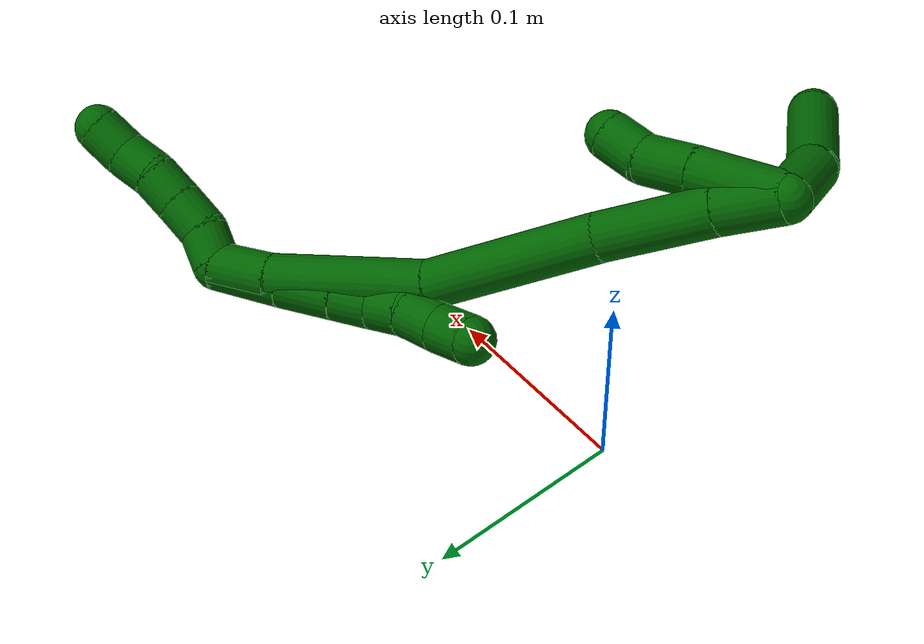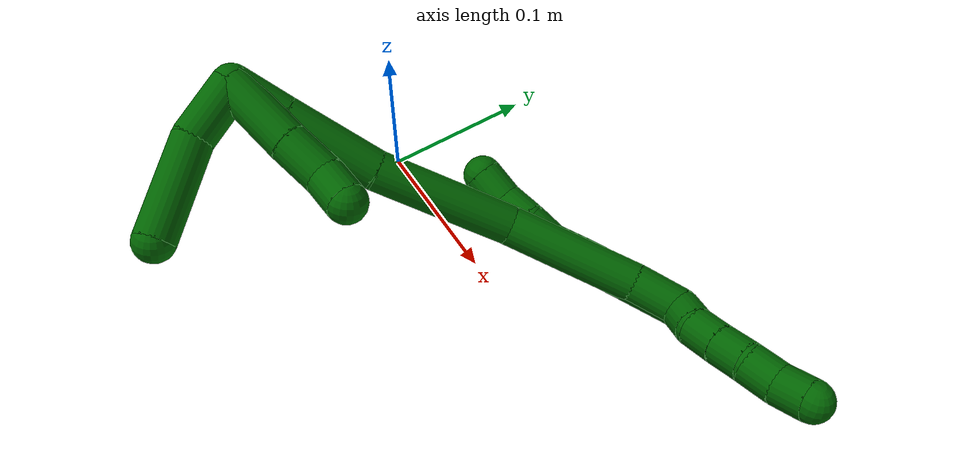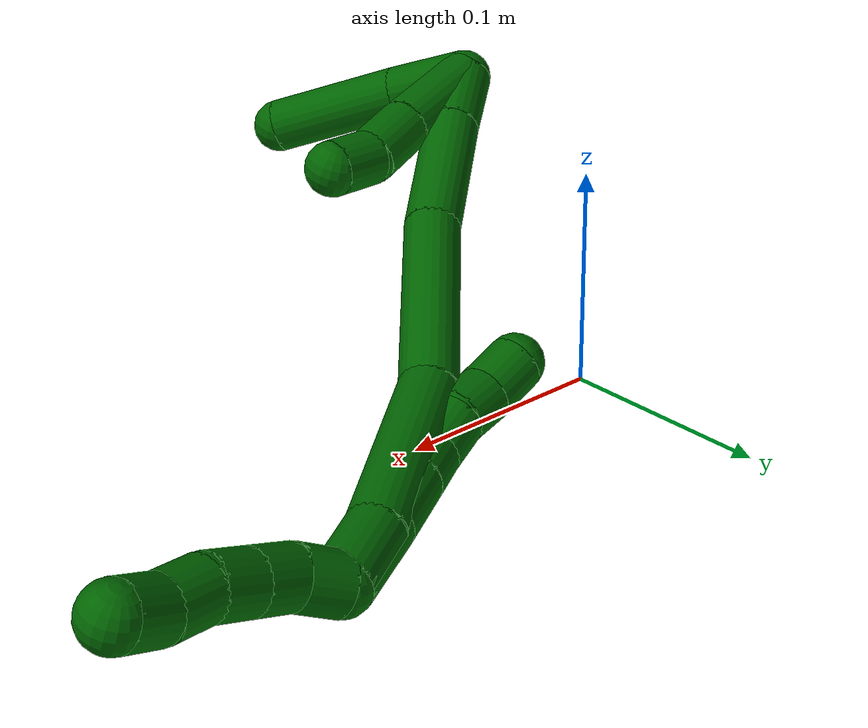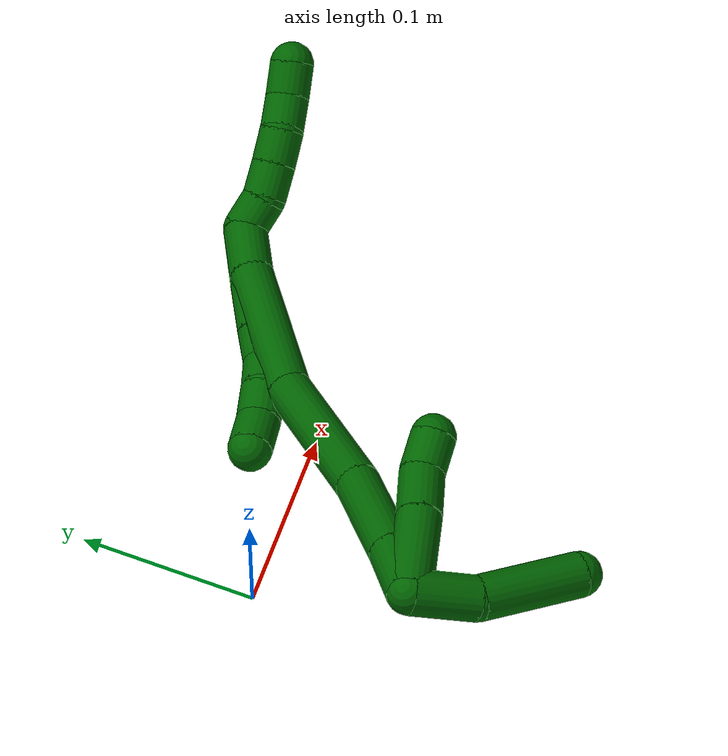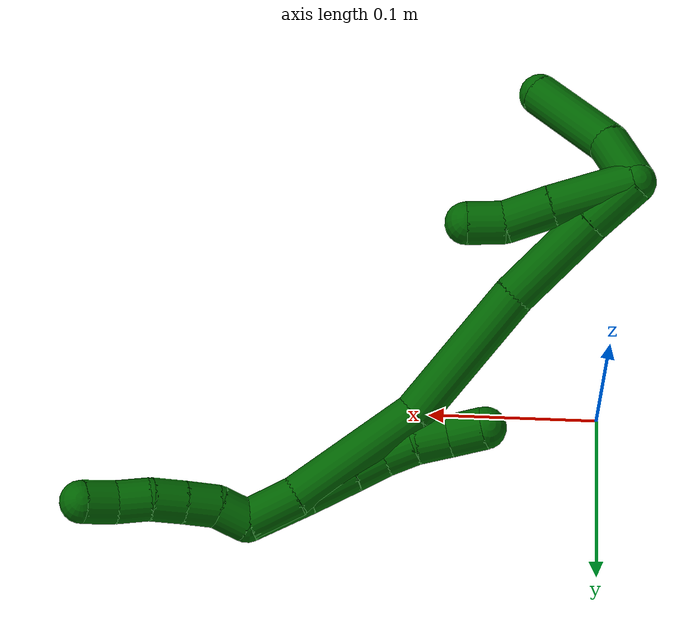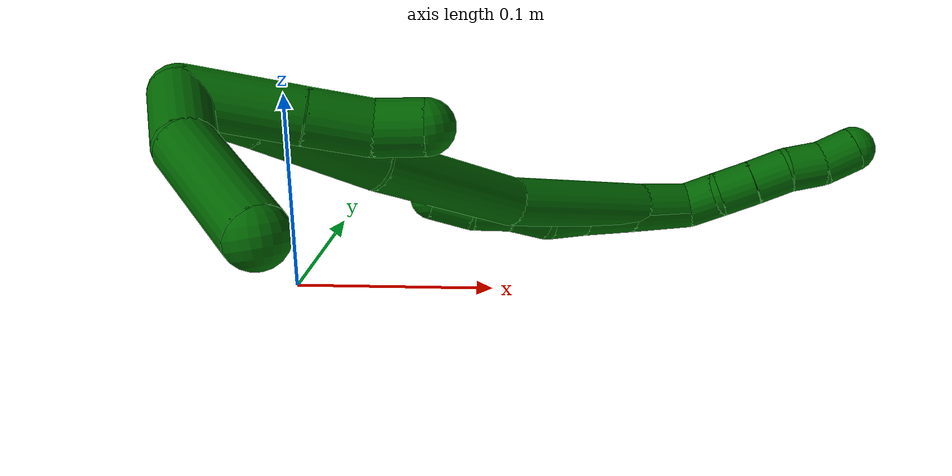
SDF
<sdf version="1.7">
 <world name="default">
  <model name="6">
   <static>0</static>
   <link name="6">
    <collision name="collision-cylinder-e_1_2_8">
     <pose>-0.017537 -0.006356 0.00207 1.25592 -1.20662 -0.92764</pose>
     <geometry><cylinder><radius>0.0125</radius><length>0.037536</length></cylinder></geometry>
     <surface>
      <friction><ode><mu>1.16</mu><mu2>1.16</mu2><slip1>0</slip1><slip2>0</slip2></ode></friction>
      <contact><ode><kp>1e+06</kp><kd>1</kd><max_vel>0</max_vel><min_depth>0.001</min_depth></ode></contact>
     </surface>
    </collision>
    <visual name="visual-cylinder-e_1_2_8">
     <pose>-0.017537 -0.006356 0.00207 1.25592 -1.20662 -0.92764</pose>
     <geometry><cylinder><radius>0.0125</radius><length>0.037536</length></cylinder></geometry>
     <material><ambient>0 0.392157 0.003922 1</ambient></material>
    </visual>
    <collision name="collision-cylinder-e_2_8_9">
     <pose>-0.048708 -0.018023 0.005957 1.24128 -1.18026 -0.893065</pose>
     <geometry><cylinder><radius>0.0125</radius><length>0.029488</length></cylinder></geometry>
     <surface>
      <friction><ode><mu>1.16</mu><mu2>1.16</mu2><slip1>0</slip1><slip2>0</slip2></ode></friction>
      <contact><ode><kp>1e+06</kp><kd>1</kd><max_vel>0</max_vel><min_depth>0.001</min_depth></ode></contact>
     </surface>
    </collision>
    <visual name="visual-cylinder-e_2_8_9">
     <pose>-0.048708 -0.018023 0.005957 1.24128 -1.18026 -0.893065</pose>
     <geometry><cylinder><radius>0.0125</radius><length>0.029488</length></cylinder></geometry>
     <material><ambient>0 0.392157 0.003922 1</ambient></material>
    </visual>
    <collision name="collision-cylinder-e_3_9_10">
     <pose>-0.071969 -0.027215 0.008706 1.33477 -1.17774 -0.968976</pose>
     <geometry><cylinder><radius>0.0125</radius><length>0.020846</length></cylinder></geometry>
     <surface>
      <friction><ode><mu>1.16</mu><mu2>1.16</mu2><slip1>0</slip1><slip2>0</slip2></ode></friction>
      <contact><ode><kp>1e+06</kp><kd>1</kd><max_vel>0</max_vel><min_depth>0.001</min_depth></ode></contact>
     </surface>
    </collision>
    <visual name="visual-cylinder-e_3_9_10">
     <pose>-0.071969 -0.027215 0.008706 1.33477 -1.17774 -0.968976</pose>
     <geometry><cylinder><radius>0.0125</radius><length>0.020846</length></cylinder></geometry>
     <material><ambient>0 0.392157 0.003922 1</ambient></material>
    </visual>
    <collision name="collision-cylinder-e_4_10_11">
     <pose>-0.09058 -0.033474 0.013594 0.541451 -1.0963 -0.335722</pose>
     <geometry><cylinder><radius>0.0125</radius><length>0.020197</length></cylinder></geometry>
     <surface>
      <friction><ode><mu>1.16</mu><mu2>1.16</mu2><slip1>0</slip1><slip2>0</slip2></ode></friction>
      <contact><ode><kp>1e+06</kp><kd>1</kd><max_vel>0</max_vel><min_depth>0.001</min_depth></ode></contact>
     </surface>
    </collision>
    <visual name="visual-cylinder-e_4_10_11">
     <pose>-0.09058 -0.033474 0.013594 0.541451 -1.0963 -0.335722</pose>
     <geometry><cylinder><radius>0.0125</radius><length>0.020197</length></cylinder></geometry>
     <material><ambient>0 0.392157 0.003922 1</ambient></material>
    </visual>
    <collision name="collision-cylinder-e_5_11_12">
     <pose>-0.109422 -0.037027 0.019635 0.512795 -1.33249 -0.406519</pose>
     <geometry><cylinder><radius>0.0125</radius><length>0.020291</length></cylinder></geometry>
     <surface>
      <friction><ode><mu>1.16</mu><mu2>1.16</mu2><slip1>0</slip1><slip2>0</slip2></ode></friction>
      <contact><ode><kp>1e+06</kp><kd>1</kd><max_vel>0</max_vel><min_depth>0.001</min_depth></ode></contact>
     </surface>
    </collision>
    <visual name="visual-cylinder-e_5_11_12">
     <pose>-0.109422 -0.037027 0.019635 0.512795 -1.33249 -0.406519</pose>
     <geometry><cylinder><radius>0.0125</radius><length>0.020291</length></cylinder></geometry>
     <material><ambient>0 0.392157 0.003922 1</ambient></material>
    </visual>
    <collision name="collision-cylinder-e_6_12_6">
     <pose>-0.129032 -0.039132 0.026322 0.199382 -1.12218 -0.125558</pose>
     <geometry><cylinder><radius>0.0125</radius><length>0.021643</length></cylinder></geometry>
     <surface>
      <friction><ode><mu>1.16</mu><mu2>1.16</mu2><slip1>0</slip1><slip2>0</slip2></ode></friction>
      <contact><ode><kp>1e+06</kp><kd>1</kd><max_vel>0</max_vel><min_depth>0.001</min_depth></ode></contact>
     </surface>
    </collision>
    <visual name="visual-cylinder-e_6_12_6">
     <pose>-0.129032 -0.039132 0.026322 0.199382 -1.12218 -0.125558</pose>
     <geometry><cylinder><radius>0.0125</radius><length>0.021643</length></cylinder></geometry>
     <material><ambient>0 0.392157 0.003922 1</ambient></material>
    </visual>
    <collision name="collision-cylinder-e_1_2_13">
     <pose>0.008655 -0.004652 0.001859 1.19068 1.04609 0.744669</pose>
     <geometry><cylinder><radius>0.0125</radius><length>0.02</length></cylinder></geometry>
     <surface>
      <friction><ode><mu>1.16</mu><mu2>1.16</mu2><slip1>0</slip1><slip2>0</slip2></ode></friction>
      <contact><ode><kp>1e+06</kp><kd>1</kd><max_vel>0</max_vel><min_depth>0.001</min_depth></ode></contact>
     </surface>
    </collision>
    <visual name="visual-cylinder-e_1_2_13">
     <pose>0.008655 -0.004652 0.001859 1.19068 1.04609 0.744669</pose>
     <geometry><cylinder><radius>0.0125</radius><length>0.02</length></cylinder></geometry>
     <material><ambient>0 0.392157 0.003922 1</ambient></material>
    </visual>
    <collision name="collision-cylinder-e_2_13_14">
     <pose>0.027042 -0.01085 0.005414 0.739177 1.33918 0.595096</pose>
     <geometry><cylinder><radius>0.0125</radius><length>0.02</length></cylinder></geometry>
     <surface>
      <friction><ode><mu>1.16</mu><mu2>1.16</mu2><slip1>0</slip1><slip2>0</slip2></ode></friction>
      <contact><ode><kp>1e+06</kp><kd>1</kd><max_vel>0</max_vel><min_depth>0.001</min_depth></ode></contact>
     </surface>
    </collision>
    <visual name="visual-cylinder-e_2_13_14">
     <pose>0.027042 -0.01085 0.005414 0.739177 1.33918 0.595096</pose>
     <geometry><cylinder><radius>0.0125</radius><length>0.02</length></cylinder></geometry>
     <material><ambient>0 0.392157 0.003922 1</ambient></material>
    </visual>
    <collision name="collision-cylinder-e_3_14_15">
     <pose>0.046504 -0.013666 0.009043 0.581197 1.3375 0.464137</pose>
     <geometry><cylinder><radius>0.0125</radius><length>0.02</length></cylinder></geometry>
     <surface>
      <friction><ode><mu>1.16</mu><mu2>1.16</mu2><slip1>0</slip1><slip2>0</slip2></ode></friction>
      <contact><ode><kp>1e+06</kp><kd>1</kd><max_vel>0</max_vel><min_depth>0.001</min_depth></ode></contact>
     </surface>
    </collision>
    <visual name="visual-cylinder-e_3_14_15">
     <pose>0.046504 -0.013666 0.009043 0.581197 1.3375 0.464137</pose>
     <geometry><cylinder><radius>0.0125</radius><length>0.02</length></cylinder></geometry>
     <material><ambient>0 0.392157 0.003922 1</ambient></material>
    </visual>
    <collision name="collision-cylinder-e_4_15_16">
     <pose>0.06623 -0.014715 0.0111 -1.0549 1.54541 -1.03295</pose>
     <geometry><cylinder><radius>0.0125</radius><length>0.02</length></cylinder></geometry>
     <surface>
      <friction><ode><mu>1.16</mu><mu2>1.16</mu2><slip1>0</slip1><slip2>0</slip2></ode></friction>
      <contact><ode><kp>1e+06</kp><kd>1</kd><max_vel>0</max_vel><min_depth>0.001</min_depth></ode></contact>
     </surface>
    </collision>
    <visual name="visual-cylinder-e_4_15_16">
     <pose>0.06623 -0.014715 0.0111 -1.0549 1.54541 -1.03295</pose>
     <geometry><cylinder><radius>0.0125</radius><length>0.02</length></cylinder></geometry>
     <material><ambient>0 0.392157 0.003922 1</ambient></material>
    </visual>
    <collision name="collision-cylinder-e_5_16_5">
     <pose>0.085895 -0.014914 0.013748 0.164861 1.31221 0.12704</pose>
     <geometry><cylinder><radius>0.0125</radius><length>0.02</length></cylinder></geometry>
     <surface>
      <friction><ode><mu>1.16</mu><mu2>1.16</mu2><slip1>0</slip1><slip2>0</slip2></ode></friction>
      <contact><ode><kp>1e+06</kp><kd>1</kd><max_vel>0</max_vel><min_depth>0.001</min_depth></ode></contact>
     </surface>
    </collision>
    <visual name="visual-cylinder-e_5_16_5">
     <pose>0.085895 -0.014914 0.013748 0.164861 1.31221 0.12704</pose>
     <geometry><cylinder><radius>0.0125</radius><length>0.02</length></cylinder></geometry>
     <material><ambient>0 0.392157 0.003922 1</ambient></material>
    </visual>
    <collision name="collision-cylinder-e_1_2_17">
     <pose>-0.014532 -0.005628 0.002573 1.142 -1.16824 -0.803161</pose>
     <geometry><cylinder><radius>0.0125</radius><length>0.031589</length></cylinder></geometry>
     <surface>
      <friction><ode><mu>1.16</mu><mu2>1.16</mu2><slip1>0</slip1><slip2>0</slip2></ode></friction>
      <contact><ode><kp>1e+06</kp><kd>1</kd><max_vel>0</max_vel><min_depth>0.001</min_depth></ode></contact>
     </surface>
    </collision>
    <visual name="visual-cylinder-e_1_2_17">
     <pose>-0.014532 -0.005628 0.002573 1.142 -1.16824 -0.803161</pose>
     <geometry><cylinder><radius>0.0125</radius><length>0.031589</length></cylinder></geometry>
     <material><ambient>0 0.392157 0.003922 1</ambient></material>
    </visual>
    <collision name="collision-cylinder-e_2_17_18">
     <pose>-0.064475 -0.031869 0.013451 1.18776 -1.01034 -0.714738</pose>
     <geometry><cylinder><radius>0.0125</radius><length>0.083615</length></cylinder></geometry>
     <surface>
      <friction><ode><mu>1.16</mu><mu2>1.16</mu2><slip1>0</slip1><slip2>0</slip2></ode></friction>
      <contact><ode><kp>1e+06</kp><kd>1</kd><max_vel>0</max_vel><min_depth>0.001</min_depth></ode></contact>
     </surface>
    </collision>
    <visual name="visual-cylinder-e_2_17_18">
     <pose>-0.064475 -0.031869 0.013451 1.18776 -1.01034 -0.714738</pose>
     <geometry><cylinder><radius>0.0125</radius><length>0.083615</length></cylinder></geometry>
     <material><ambient>0 0.392157 0.003922 1</ambient></material>
    </visual>
    <collision name="collision-cylinder-e_3_18_19">
     <pose>-0.129502 -0.08271 0.036823 1.10843 -0.719879 -0.457678</pose>
     <geometry><cylinder><radius>0.0125</radius><length>0.08984</length></cylinder></geometry>
     <surface>
      <friction><ode><mu>1.16</mu><mu2>1.16</mu2><slip1>0</slip1><slip2>0</slip2></ode></friction>
      <contact><ode><kp>1e+06</kp><kd>1</kd><max_vel>0</max_vel><min_depth>0.001</min_depth></ode></contact>
     </surface>
    </collision>
    <visual name="visual-cylinder-e_3_18_19">
     <pose>-0.129502 -0.08271 0.036823 1.10843 -0.719879 -0.457678</pose>
     <geometry><cylinder><radius>0.0125</radius><length>0.08984</length></cylinder></geometry>
     <material><ambient>0 0.392157 0.003922 1</ambient></material>
    </visual>
    <collision name="collision-cylinder-e_4_19_20">
     <pose>-0.180498 -0.130325 0.064907 0.928096 -0.777528 -0.404417</pose>
     <geometry><cylinder><radius>0.0125</radius><length>0.060956</length></cylinder></geometry>
     <surface>
      <friction><ode><mu>1.16</mu><mu2>1.16</mu2><slip1>0</slip1><slip2>0</slip2></ode></friction>
      <contact><ode><kp>1e+06</kp><kd>1</kd><max_vel>0</max_vel><min_depth>0.001</min_depth></ode></contact>
     </surface>
    </collision>
    <visual name="visual-cylinder-e_4_19_20">
     <pose>-0.180498 -0.130325 0.064907 0.928096 -0.777528 -0.404417</pose>
     <geometry><cylinder><radius>0.0125</radius><length>0.060956</length></cylinder></geometry>
     <material><ambient>0 0.392157 0.003922 1</ambient></material>
    </visual>
    <collision name="collision-cylinder-e_5_20_1">
     <pose>-0.21436 -0.156853 0.084973 0.914016 -0.824413 -0.423574</pose>
     <geometry><cylinder><radius>0.0125</radius><length>0.034</length></cylinder></geometry>
     <surface>
      <friction><ode><mu>1.16</mu><mu2>1.16</mu2><slip1>0</slip1><slip2>0</slip2></ode></friction>
      <contact><ode><kp>1e+06</kp><kd>1</kd><max_vel>0</max_vel><min_depth>0.001</min_depth></ode></contact>
     </surface>
    </collision>
    <visual name="visual-cylinder-e_5_20_1">
     <pose>-0.21436 -0.156853 0.084973 0.914016 -0.824413 -0.423574</pose>
     <geometry><cylinder><radius>0.0125</radius><length>0.034</length></cylinder></geometry>
     <material><ambient>0 0.392157 0.003922 1</ambient></material>
    </visual>
    <collision name="collision-cylinder-e_1_1_21">
     <pose>-0.2239 -0.181023 0.080774 2.21325 0.155364 0.308479</pose>
     <geometry><cylinder><radius>0.0125</radius><length>0.038</length></cylinder></geometry>
     <surface>
      <friction><ode><mu>1.16</mu><mu2>1.16</mu2><slip1>0</slip1><slip2>0</slip2></ode></friction>
      <contact><ode><kp>1e+06</kp><kd>1</kd><max_vel>0</max_vel><min_depth>0.001</min_depth></ode></contact>
     </surface>
    </collision>
    <visual name="visual-cylinder-e_1_1_21">
     <pose>-0.2239 -0.181023 0.080774 2.21325 0.155364 0.308479</pose>
     <geometry><cylinder><radius>0.0125</radius><length>0.038</length></cylinder></geometry>
     <material><ambient>0 0.392157 0.003922 1</ambient></material>
    </visual>
    <collision name="collision-cylinder-e_2_21_4">
     <pose>-0.20698 -0.217151 0.051628 2.27433 0.467863 0.95059</pose>
     <geometry><cylinder><radius>0.0125</radius><length>0.062</length></cylinder></geometry>
     <surface>
      <friction><ode><mu>1.16</mu><mu2>1.16</mu2><slip1>0</slip1><slip2>0</slip2></ode></friction>
      <contact><ode><kp>1e+06</kp><kd>1</kd><max_vel>0</max_vel><min_depth>0.001</min_depth></ode></contact>
     </surface>
    </collision>
    <visual name="visual-cylinder-e_2_21_4">
     <pose>-0.20698 -0.217151 0.051628 2.27433 0.467863 0.95059</pose>
     <geometry><cylinder><radius>0.0125</radius><length>0.062</length></cylinder></geometry>
     <material><ambient>0 0.392157 0.003922 1</ambient></material>
    </visual>
    <collision name="collision-cylinder-e_1_1_22">
     <pose>-0.20395 -0.162279 0.083865 -2.71408 1.1976 -2.52562</pose>
     <geometry><cylinder><radius>0.0125</radius><length>0.049164</length></cylinder></geometry>
     <surface>
      <friction><ode><mu>1.16</mu><mu2>1.16</mu2><slip1>0</slip1><slip2>0</slip2></ode></friction>
      <contact><ode><kp>1e+06</kp><kd>1</kd><max_vel>0</max_vel><min_depth>0.001</min_depth></ode></contact>
     </surface>
    </collision>
    <visual name="visual-cylinder-e_1_1_22">
     <pose>-0.20395 -0.162279 0.083865 -2.71408 1.1976 -2.52562</pose>
     <geometry><cylinder><radius>0.0125</radius><length>0.049164</length></cylinder></geometry>
     <material><ambient>0 0.392157 0.003922 1</ambient></material>
    </visual>
    <collision name="collision-cylinder-e_2_22_23">
     <pose>-0.16779 -0.155685 0.071125 -2.58108 1.18348 -2.33232</pose>
     <geometry><cylinder><radius>0.0125</radius><length>0.028663</length></cylinder></geometry>
     <surface>
      <friction><ode><mu>1.16</mu><mu2>1.16</mu2><slip1>0</slip1><slip2>0</slip2></ode></friction>
      <contact><ode><kp>1e+06</kp><kd>1</kd><max_vel>0</max_vel><min_depth>0.001</min_depth></ode></contact>
     </surface>
    </collision>
    <visual name="visual-cylinder-e_2_22_23">
     <pose>-0.16779 -0.155685 0.071125 -2.58108 1.18348 -2.33232</pose>
     <geometry><cylinder><radius>0.0125</radius><length>0.028663</length></cylinder></geometry>
     <material><ambient>0 0.392157 0.003922 1</ambient></material>
    </visual>
    <collision name="collision-cylinder-e_3_23_3">
     <pose>-0.143581 -0.153573 0.064913 2.70201 1.40791 2.62703</pose>
     <geometry><cylinder><radius>0.0125</radius><length>0.022173</length></cylinder></geometry>
     <surface>
      <friction><ode><mu>1.16</mu><mu2>1.16</mu2><slip1>0</slip1><slip2>0</slip2></ode></friction>
      <contact><ode><kp>1e+06</kp><kd>1</kd><max_vel>0</max_vel><min_depth>0.001</min_depth></ode></contact>
     </surface>
    </collision>
    <visual name="visual-cylinder-e_3_23_3">
     <pose>-0.143581 -0.153573 0.064913 2.70201 1.40791 2.62703</pose>
     <geometry><cylinder><radius>0.0125</radius><length>0.022173</length></cylinder></geometry>
     <material><ambient>0 0.392157 0.003922 1</ambient></material>
    </visual>
    <collision name="collision-sphere-3">
     <pose>-0.132641 -0.154338 0.063286 0 -0 0</pose>
     <geometry><sphere><radius>0.0125</radius></sphere></geometry>
     <surface>
      <friction><ode><mu>1.16</mu><mu2>1.16</mu2><slip1>0</slip1><slip2>0</slip2></ode></friction>
      <contact><ode><kp>1e+06</kp><kd>1</kd><max_vel>0</max_vel><min_depth>0.001</min_depth></ode></contact>
     </surface>
    </collision>
    <visual name="visual-sphere-3">
     <pose>-0.132641 -0.154338 0.063286 0 -0 0</pose>
     <geometry><sphere><radius>0.0125</radius></sphere></geometry>
     <material><ambient>0 0.392157 0.003922 1</ambient></material>
    </visual>
    <collision name="collision-sphere-23">
     <pose>-0.154521 -0.152808 0.06654 0 -0 0</pose>
     <geometry><sphere><radius>0.0125</radius></sphere></geometry>
     <surface>
      <friction><ode><mu>1.16</mu><mu2>1.16</mu2><slip1>0</slip1><slip2>0</slip2></ode></friction>
      <contact><ode><kp>1e+06</kp><kd>1</kd><max_vel>0</max_vel><min_depth>0.001</min_depth></ode></contact>
     </surface>
    </collision>
    <visual name="visual-sphere-23">
     <pose>-0.154521 -0.152808 0.06654 0 -0 0</pose>
     <geometry><sphere><radius>0.0125</radius></sphere></geometry>
     <material><ambient>0 0.392157 0.003922 1</ambient></material>
    </visual>
    <collision name="collision-sphere-22">
     <pose>-0.18106 -0.158563 0.075709 0 -0 0</pose>
     <geometry><sphere><radius>0.0125</radius></sphere></geometry>
     <surface>
      <friction><ode><mu>1.16</mu><mu2>1.16</mu2><slip1>0</slip1><slip2>0</slip2></ode></friction>
      <contact><ode><kp>1e+06</kp><kd>1</kd><max_vel>0</max_vel><min_depth>0.001</min_depth></ode></contact>
     </surface>
    </collision>
    <visual name="visual-sphere-22">
     <pose>-0.18106 -0.158563 0.075709 0 -0 0</pose>
     <geometry><sphere><radius>0.0125</radius></sphere></geometry>
     <material><ambient>0 0.392157 0.003922 1</ambient></material>
    </visual>
    <collision name="collision-sphere-4">
     <pose>-0.192999 -0.23825 0.033729 0 -0 0</pose>
     <geometry><sphere><radius>0.0125</radius></sphere></geometry>
     <surface>
      <friction><ode><mu>1.16</mu><mu2>1.16</mu2><slip1>0</slip1><slip2>0</slip2></ode></friction>
      <contact><ode><kp>1e+06</kp><kd>1</kd><max_vel>0</max_vel><min_depth>0.001</min_depth></ode></contact>
     </surface>
    </collision>
    <visual name="visual-sphere-4">
     <pose>-0.192999 -0.23825 0.033729 0 -0 0</pose>
     <geometry><sphere><radius>0.0125</radius></sphere></geometry>
     <material><ambient>0 0.392157 0.003922 1</ambient></material>
    </visual>
    <collision name="collision-sphere-21">
     <pose>-0.22096 -0.196052 0.069527 0 -0 0</pose>
     <geometry><sphere><radius>0.0125</radius></sphere></geometry>
     <surface>
      <friction><ode><mu>1.16</mu><mu2>1.16</mu2><slip1>0</slip1><slip2>0</slip2></ode></friction>
      <contact><ode><kp>1e+06</kp><kd>1</kd><max_vel>0</max_vel><min_depth>0.001</min_depth></ode></contact>
     </surface>
    </collision>
    <visual name="visual-sphere-21">
     <pose>-0.22096 -0.196052 0.069527 0 -0 0</pose>
     <geometry><sphere><radius>0.0125</radius></sphere></geometry>
     <material><ambient>0 0.392157 0.003922 1</ambient></material>
    </visual>
    <collision name="collision-sphere-1">
     <pose>-0.22684 -0.165995 0.092021 0 -0 0</pose>
     <geometry><sphere><radius>0.0125</radius></sphere></geometry>
     <surface>
      <friction><ode><mu>1.16</mu><mu2>1.16</mu2><slip1>0</slip1><slip2>0</slip2></ode></friction>
      <contact><ode><kp>1e+06</kp><kd>1</kd><max_vel>0</max_vel><min_depth>0.001</min_depth></ode></contact>
     </surface>
    </collision>
    <visual name="visual-sphere-1">
     <pose>-0.22684 -0.165995 0.092021 0 -0 0</pose>
     <geometry><sphere><radius>0.0125</radius></sphere></geometry>
     <material><ambient>0 0.392157 0.003922 1</ambient></material>
    </visual>
    <collision name="collision-sphere-12">
     <pose>-0.119281 -0.038202 0.021722 0 -0 0</pose>
     <geometry><sphere><radius>0.0125</radius></sphere></geometry>
     <surface>
      <friction><ode><mu>1.16</mu><mu2>1.16</mu2><slip1>0</slip1><slip2>0</slip2></ode></friction>
      <contact><ode><kp>1e+06</kp><kd>1</kd><max_vel>0</max_vel><min_depth>0.001</min_depth></ode></contact>
     </surface>
    </collision>
    <visual name="visual-sphere-12">
     <pose>-0.119281 -0.038202 0.021722 0 -0 0</pose>
     <geometry><sphere><radius>0.0125</radius></sphere></geometry>
     <material><ambient>0 0.392157 0.003922 1</ambient></material>
    </visual>
    <collision name="collision-sphere-11">
     <pose>-0.099563 -0.035852 0.017548 0 -0 0</pose>
     <geometry><sphere><radius>0.0125</radius></sphere></geometry>
     <surface>
      <friction><ode><mu>1.16</mu><mu2>1.16</mu2><slip1>0</slip1><slip2>0</slip2></ode></friction>
      <contact><ode><kp>1e+06</kp><kd>1</kd><max_vel>0</max_vel><min_depth>0.001</min_depth></ode></contact>
     </surface>
    </collision>
    <visual name="visual-sphere-11">
     <pose>-0.099563 -0.035852 0.017548 0 -0 0</pose>
     <geometry><sphere><radius>0.0125</radius></sphere></geometry>
     <material><ambient>0 0.392157 0.003922 1</ambient></material>
    </visual>
    <collision name="collision-sphere-10">
     <pose>-0.081597 -0.031096 0.00964 0 -0 0</pose>
     <geometry><sphere><radius>0.0125</radius></sphere></geometry>
     <surface>
      <friction><ode><mu>1.16</mu><mu2>1.16</mu2><slip1>0</slip1><slip2>0</slip2></ode></friction>
      <contact><ode><kp>1e+06</kp><kd>1</kd><max_vel>0</max_vel><min_depth>0.001</min_depth></ode></contact>
     </surface>
    </collision>
    <visual name="visual-sphere-10">
     <pose>-0.081597 -0.031096 0.00964 0 -0 0</pose>
     <geometry><sphere><radius>0.0125</radius></sphere></geometry>
     <material><ambient>0 0.392157 0.003922 1</ambient></material>
    </visual>
    <collision name="collision-sphere-9">
     <pose>-0.062341 -0.023334 0.007773 0 -0 0</pose>
     <geometry><sphere><radius>0.0125</radius></sphere></geometry>
     <surface>
      <friction><ode><mu>1.16</mu><mu2>1.16</mu2><slip1>0</slip1><slip2>0</slip2></ode></friction>
      <contact><ode><kp>1e+06</kp><kd>1</kd><max_vel>0</max_vel><min_depth>0.001</min_depth></ode></contact>
     </surface>
    </collision>
    <visual name="visual-sphere-9">
     <pose>-0.062341 -0.023334 0.007773 0 -0 0</pose>
     <geometry><sphere><radius>0.0125</radius></sphere></geometry>
     <material><ambient>0 0.392157 0.003922 1</ambient></material>
    </visual>
    <collision name="collision-sphere-2">
     <geometry><sphere><radius>0.0125</radius></sphere></geometry>
     <surface>
      <friction><ode><mu>1.16</mu><mu2>1.16</mu2><slip1>0</slip1><slip2>0</slip2></ode></friction>
      <contact><ode><kp>1e+06</kp><kd>1</kd><max_vel>0</max_vel><min_depth>0.001</min_depth></ode></contact>
     </surface>
    </collision>
    <visual name="visual-sphere-2">
     <geometry><sphere><radius>0.0125</radius></sphere></geometry>
     <material><ambient>0 0.392157 0.003922 1</ambient></material>
    </visual>
    <collision name="collision-sphere-19">
     <pose>-0.159117 -0.112939 0.051889 0 -0 0</pose>
     <geometry><sphere><radius>0.0125</radius></sphere></geometry>
     <surface>
      <friction><ode><mu>1.16</mu><mu2>1.16</mu2><slip1>0</slip1><slip2>0</slip2></ode></friction>
      <contact><ode><kp>1e+06</kp><kd>1</kd><max_vel>0</max_vel><min_depth>0.001</min_depth></ode></contact>
     </surface>
    </collision>
    <visual name="visual-sphere-19">
     <pose>-0.159117 -0.112939 0.051889 0 -0 0</pose>
     <geometry><sphere><radius>0.0125</radius></sphere></geometry>
     <material><ambient>0 0.392157 0.003922 1</ambient></material>
    </visual>
    <collision name="collision-sphere-8">
     <pose>-0.035074 -0.012712 0.00414 0 -0 0</pose>
     <geometry><sphere><radius>0.0125</radius></sphere></geometry>
     <surface>
      <friction><ode><mu>1.16</mu><mu2>1.16</mu2><slip1>0</slip1><slip2>0</slip2></ode></friction>
      <contact><ode><kp>1e+06</kp><kd>1</kd><max_vel>0</max_vel><min_depth>0.001</min_depth></ode></contact>
     </surface>
    </collision>
    <visual name="visual-sphere-8">
     <pose>-0.035074 -0.012712 0.00414 0 -0 0</pose>
     <geometry><sphere><radius>0.0125</radius></sphere></geometry>
     <material><ambient>0 0.392157 0.003922 1</ambient></material>
    </visual>
    <collision name="collision-sphere-6">
     <pose>-0.138782 -0.040061 0.030922 0 -0 0</pose>
     <geometry><sphere><radius>0.0125</radius></sphere></geometry>
     <surface>
      <friction><ode><mu>1.16</mu><mu2>1.16</mu2><slip1>0</slip1><slip2>0</slip2></ode></friction>
      <contact><ode><kp>1e+06</kp><kd>1</kd><max_vel>0</max_vel><min_depth>0.001</min_depth></ode></contact>
     </surface>
    </collision>
    <visual name="visual-sphere-6">
     <pose>-0.138782 -0.040061 0.030922 0 -0 0</pose>
     <geometry><sphere><radius>0.0125</radius></sphere></geometry>
     <material><ambient>0 0.392157 0.003922 1</ambient></material>
    </visual>
    <collision name="collision-sphere-13">
     <pose>0.017309 -0.009304 0.003717 0 -0 0</pose>
     <geometry><sphere><radius>0.0125</radius></sphere></geometry>
     <surface>
      <friction><ode><mu>1.16</mu><mu2>1.16</mu2><slip1>0</slip1><slip2>0</slip2></ode></friction>
      <contact><ode><kp>1e+06</kp><kd>1</kd><max_vel>0</max_vel><min_depth>0.001</min_depth></ode></contact>
     </surface>
    </collision>
    <visual name="visual-sphere-13">
     <pose>0.017309 -0.009304 0.003717 0 -0 0</pose>
     <geometry><sphere><radius>0.0125</radius></sphere></geometry>
     <material><ambient>0 0.392157 0.003922 1</ambient></material>
    </visual>
    <collision name="collision-sphere-14">
     <pose>0.036775 -0.012397 0.00711 0 -0 0</pose>
     <geometry><sphere><radius>0.0125</radius></sphere></geometry>
     <surface>
      <friction><ode><mu>1.16</mu><mu2>1.16</mu2><slip1>0</slip1><slip2>0</slip2></ode></friction>
      <contact><ode><kp>1e+06</kp><kd>1</kd><max_vel>0</max_vel><min_depth>0.001</min_depth></ode></contact>
     </surface>
    </collision>
    <visual name="visual-sphere-14">
     <pose>0.036775 -0.012397 0.00711 0 -0 0</pose>
     <geometry><sphere><radius>0.0125</radius></sphere></geometry>
     <material><ambient>0 0.392157 0.003922 1</ambient></material>
    </visual>
    <collision name="collision-sphere-15">
     <pose>0.056234 -0.014936 0.010975 0 -0 0</pose>
     <geometry><sphere><radius>0.0125</radius></sphere></geometry>
     <surface>
      <friction><ode><mu>1.16</mu><mu2>1.16</mu2><slip1>0</slip1><slip2>0</slip2></ode></friction>
      <contact><ode><kp>1e+06</kp><kd>1</kd><max_vel>0</max_vel><min_depth>0.001</min_depth></ode></contact>
     </surface>
    </collision>
    <visual name="visual-sphere-15">
     <pose>0.056234 -0.014936 0.010975 0 -0 0</pose>
     <geometry><sphere><radius>0.0125</radius></sphere></geometry>
     <material><ambient>0 0.392157 0.003922 1</ambient></material>
    </visual>
    <collision name="collision-sphere-16">
     <pose>0.076227 -0.014494 0.011225 0 -0 0</pose>
     <geometry><sphere><radius>0.0125</radius></sphere></geometry>
     <surface>
      <friction><ode><mu>1.16</mu><mu2>1.16</mu2><slip1>0</slip1><slip2>0</slip2></ode></friction>
      <contact><ode><kp>1e+06</kp><kd>1</kd><max_vel>0</max_vel><min_depth>0.001</min_depth></ode></contact>
     </surface>
    </collision>
    <visual name="visual-sphere-16">
     <pose>0.076227 -0.014494 0.011225 0 -0 0</pose>
     <geometry><sphere><radius>0.0125</radius></sphere></geometry>
     <material><ambient>0 0.392157 0.003922 1</ambient></material>
    </visual>
    <collision name="collision-sphere-5">
     <pose>0.095562 -0.015333 0.01627 0 -0 0</pose>
     <geometry><sphere><radius>0.0125</radius></sphere></geometry>
     <surface>
      <friction><ode><mu>1.16</mu><mu2>1.16</mu2><slip1>0</slip1><slip2>0</slip2></ode></friction>
      <contact><ode><kp>1e+06</kp><kd>1</kd><max_vel>0</max_vel><min_depth>0.001</min_depth></ode></contact>
     </surface>
    </collision>
    <visual name="visual-sphere-5">
     <pose>0.095562 -0.015333 0.01627 0 -0 0</pose>
     <geometry><sphere><radius>0.0125</radius></sphere></geometry>
     <material><ambient>0 0.392157 0.003922 1</ambient></material>
    </visual>
    <collision name="collision-sphere-17">
     <pose>-0.029063 -0.011255 0.005146 0 -0 0</pose>
     <geometry><sphere><radius>0.0125</radius></sphere></geometry>
     <surface>
      <friction><ode><mu>1.16</mu><mu2>1.16</mu2><slip1>0</slip1><slip2>0</slip2></ode></friction>
      <contact><ode><kp>1e+06</kp><kd>1</kd><max_vel>0</max_vel><min_depth>0.001</min_depth></ode></contact>
     </surface>
    </collision>
    <visual name="visual-sphere-17">
     <pose>-0.029063 -0.011255 0.005146 0 -0 0</pose>
     <geometry><sphere><radius>0.0125</radius></sphere></geometry>
     <material><ambient>0 0.392157 0.003922 1</ambient></material>
    </visual>
    <collision name="collision-sphere-18">
     <pose>-0.099886 -0.052482 0.021757 0 -0 0</pose>
     <geometry><sphere><radius>0.0125</radius></sphere></geometry>
     <surface>
      <friction><ode><mu>1.16</mu><mu2>1.16</mu2><slip1>0</slip1><slip2>0</slip2></ode></friction>
      <contact><ode><kp>1e+06</kp><kd>1</kd><max_vel>0</max_vel><min_depth>0.001</min_depth></ode></contact>
     </surface>
    </collision>
    <visual name="visual-sphere-18">
     <pose>-0.099886 -0.052482 0.021757 0 -0 0</pose>
     <geometry><sphere><radius>0.0125</radius></sphere></geometry>
     <material><ambient>0 0.392157 0.003922 1</ambient></material>
    </visual>
    <collision name="collision-sphere-20">
     <pose>-0.20188 -0.147712 0.077926 0 -0 0</pose>
     <geometry><sphere><radius>0.0125</radius></sphere></geometry>
     <surface>
      <friction><ode><mu>1.16</mu><mu2>1.16</mu2><slip1>0</slip1><slip2>0</slip2></ode></friction>
      <contact><ode><kp>1e+06</kp><kd>1</kd><max_vel>0</max_vel><min_depth>0.001</min_depth></ode></contact>
     </surface>
    </collision>
    <visual name="visual-sphere-20">
     <pose>-0.20188 -0.147712 0.077926 0 -0 0</pose>
     <geometry><sphere><radius>0.0125</radius></sphere></geometry>
     <material><ambient>0 0.392157 0.003922 1</ambient></material>
    </visual>
    <inertial>
     <pose>-0.107849 -0.086035 0.036976 0 -0 0</pose>
     <mass>0.75</mass>
     <inertia><ixx>5.3e-05</ixx><ixy>0</ixy><ixz>0</ixz><iyy>8.1e-05</iyy><iyz>0</iyz><izz>0.000201</izz></inertia>
    </inertial>
   </link>
   <pose>0.202737 0.081406 0.01882 -0.27774 -0.136011 0.178136</pose>
  </model>
 </world>
</sdf>
